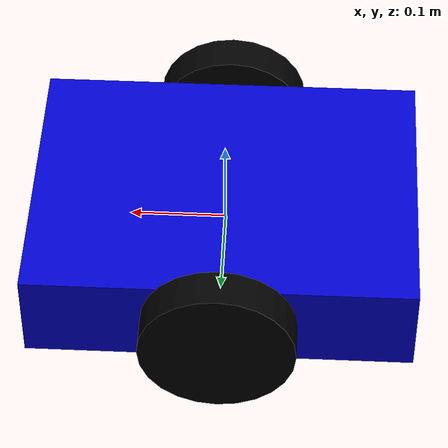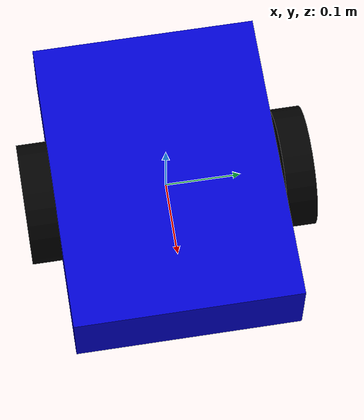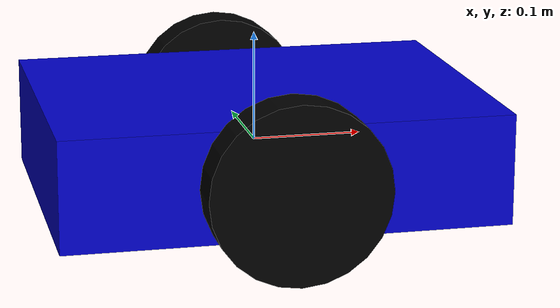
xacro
<?xml version="1.0"?>
<robot name="my_robot" xmlns:xacro="http://www.ros.org/wiki/xacro">

  <!-- ① 변수 정의: 값은 전부 여기서만 관리 -->
  <xacro:property name="wheel_radius" value="0.08"/>
  <xacro:property name="wheel_length" value="0.04"/>
  <xacro:property name="wheel_y" value="0.17"/>
  <xacro:property name="pi_half" value="1.5708"/>

  <link name="base_link">
    <visual>
      <geometry>
        <box size="0.4 0.3 0.1"/>
      </geometry>
      <material name="blue">
        <color rgba="0 0 0.8 1"/>
      </material>
    </visual>
  </link>

  <!-- ② 바퀴 매크로: prefix=이름 접두사, y=붙는 위치 -->
  <xacro:macro name="wheel" params="prefix y">
    <link name="${prefix}_wheel">
      <visual>
        <origin xyz="0 0 0" rpy="${pi_half} 0 0"/>
        <geometry>
          <cylinder radius="${wheel_radius}" length="${wheel_length}"/>
        </geometry>
        <material name="black">
          <color rgba="0 0 0 1"/>
        </material>
      </visual>
    </link>
    <joint name="${prefix}_wheel_joint" type="continuous">
      <parent link="base_link"/>
      <child link="${prefix}_wheel"/>
      <origin xyz="0 ${y} 0"/>
      <axis xyz="0 1 0"/>
    </joint>
  </xacro:macro>

  <!-- ③ 매크로 호출: 바퀴 두 개가 이 두 줄로 끝 -->
  <xacro:wheel prefix="left"  y="${wheel_y}"/>
  <xacro:wheel prefix="right" y="${-wheel_y}"/>

</robot>
